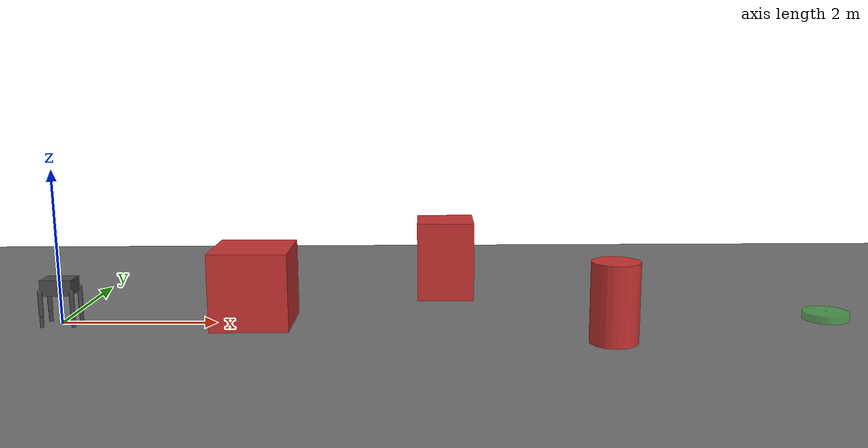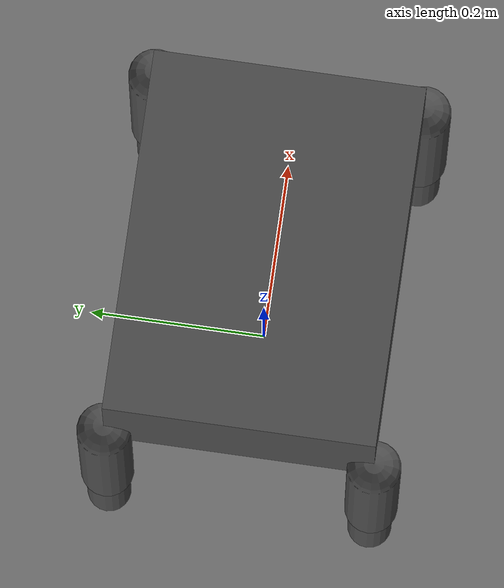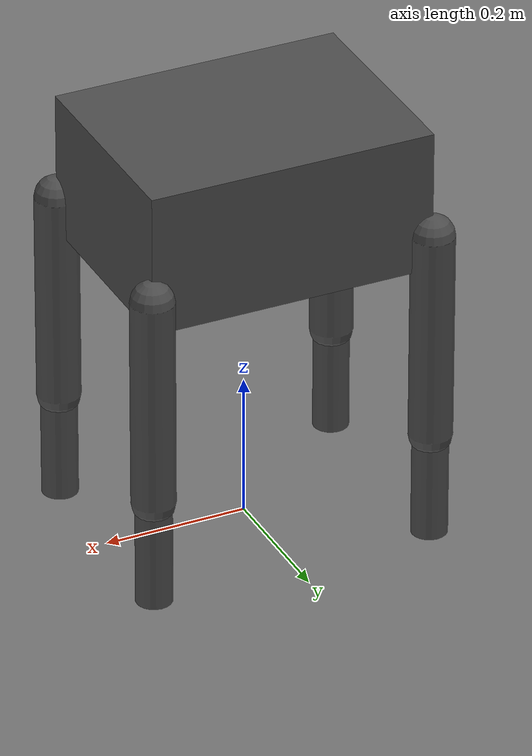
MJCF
<mujoco model="go2_obstacle_navigation">
  <compiler angle="radian" autolimits="true"/>
  <option timestep="0.001" gravity="0 0 -9.81" integrator="implicitfast"/>
  <default><joint armature="0.01" damping="0.1"/><geom condim="4" friction="1.0 0.005 0.0001"/></default>
  <asset>
    <texture name="grid" type="2d" builtin="checker" rgb1="0.4 0.4 0.4" rgb2="0.5 0.5 0.5" width="512" height="512"/>
    <material name="grid_mat" texture="grid" texrepeat="10 10" reflectance="0.1"/>
    <material name="obstacle_mat" rgba="0.8 0.2 0.2 1"/>
    <material name="goal_mat" rgba="0.2 0.8 0.2 0.5"/>
    <material name="robot_mat" rgba="0.3 0.3 0.3 1"/>
  </asset>
  <worldbody>
    <geom name="ground" type="plane" size="20 20 0.1" material="grid_mat"/>
    <light name="top" pos="0 0 10" dir="0 0 -1" diffuse="0.8 0.8 0.8"/>
    <body name="torso" pos="0 0 0.5">
      <inertial mass="20.0" pos="0 0 0" diaginertia="0.5 0.5 0.5"/>
      <geom name="torso_geom" type="box" size="0.2 0.15 0.1" material="robot_mat"/>
      <body name="fl_upper" pos="0.2 0.15 -0.05"><inertial mass="2" pos="0 0 -0.15" diaginertia="0.02 0.02 0.02"/><joint name="fl_hip" type="hinge" axis="1 0 0" range="-1 1"/><geom name="fl_ug" type="capsule" size="0.03" fromto="0 0 0 0 0 -0.3" material="robot_mat"/><body name="fl_lower" pos="0 0 -0.3"><inertial mass="1.5" pos="0 0 -0.15" diaginertia="0.01 0.01 0.01"/><joint name="fl_knee" type="hinge" axis="0 1 0" range="-2 0"/><geom name="fl_lg" type="capsule" size="0.025" fromto="0 0 0 0 0 -0.3" material="robot_mat"/><body name="fl_foot" pos="0 0 -0.3"><inertial mass="0.5" pos="0 0 0" diaginertia="0.001 0.001 0.001"/><geom name="fl_fg" type="sphere" size="0.03" material="robot_mat"/><site name="fl_foot_site" pos="0 0 0"/></body></body></body>
      <body name="fr_upper" pos="0.2 -0.15 -0.05"><inertial mass="2" pos="0 0 -0.15" diaginertia="0.02 0.02 0.02"/><joint name="fr_hip" type="hinge" axis="1 0 0" range="-1 1"/><geom name="fr_ug" type="capsule" size="0.03" fromto="0 0 0 0 0 -0.3" material="robot_mat"/><body name="fr_lower" pos="0 0 -0.3"><inertial mass="1.5" pos="0 0 -0.15" diaginertia="0.01 0.01 0.01"/><joint name="fr_knee" type="hinge" axis="0 1 0" range="-2 0"/><geom name="fr_lg" type="capsule" size="0.025" fromto="0 0 0 0 0 -0.3" material="robot_mat"/><body name="fr_foot" pos="0 0 -0.3"><inertial mass="0.5" pos="0 0 0" diaginertia="0.001 0.001 0.001"/><geom name="fr_fg" type="sphere" size="0.03" material="robot_mat"/><site name="fr_foot_site" pos="0 0 0"/></body></body></body>
      <body name="rl_upper" pos="-0.2 0.15 -0.05"><inertial mass="2" pos="0 0 -0.15" diaginertia="0.02 0.02 0.02"/><joint name="rl_hip" type="hinge" axis="1 0 0" range="-1 1"/><geom name="rl_ug" type="capsule" size="0.03" fromto="0 0 0 0 0 -0.3" material="robot_mat"/><body name="rl_lower" pos="0 0 -0.3"><inertial mass="1.5" pos="0 0 -0.15" diaginertia="0.01 0.01 0.01"/><joint name="rl_knee" type="hinge" axis="0 1 0" range="-2 0"/><geom name="rl_lg" type="capsule" size="0.025" fromto="0 0 0 0 0 -0.3" material="robot_mat"/><body name="rl_foot" pos="0 0 -0.3"><inertial mass="0.5" pos="0 0 0" diaginertia="0.001 0.001 0.001"/><geom name="rl_fg" type="sphere" size="0.03" material="robot_mat"/><site name="rl_foot_site" pos="0 0 0"/></body></body></body>
      <body name="rr_upper" pos="-0.2 -0.15 -0.05"><inertial mass="2" pos="0 0 -0.15" diaginertia="0.02 0.02 0.02"/><joint name="rr_hip" type="hinge" axis="1 0 0" range="-1 1"/><geom name="rr_ug" type="capsule" size="0.03" fromto="0 0 0 0 0 -0.3" material="robot_mat"/><body name="rr_lower" pos="0 0 -0.3"><inertial mass="1.5" pos="0 0 -0.15" diaginertia="0.01 0.01 0.01"/><joint name="rr_knee" type="hinge" axis="0 1 0" range="-2 0"/><geom name="rr_lg" type="capsule" size="0.025" fromto="0 0 0 0 0 -0.3" material="robot_mat"/><body name="rr_foot" pos="0 0 -0.3"><inertial mass="0.5" pos="0 0 0" diaginertia="0.001 0.001 0.001"/><geom name="rr_fg" type="sphere" size="0.03" material="robot_mat"/><site name="rr_foot_site" pos="0 0 0"/></body></body></body>
      <freejoint name="root"/>
    </body>
    <body name="obstacle_1" pos="2.5 0 0.5"><geom name="obs1" type="box" size="0.5 0.5 0.5" material="obstacle_mat" contype="1" conaffinity="1"/></body>
    <body name="obstacle_2" pos="5.0 1.5 0.5"><geom name="obs2" type="box" size="0.4 0.4 0.6" material="obstacle_mat" contype="1" conaffinity="1"/></body>
    <body name="obstacle_3" pos="7.0 -1.0 0.5"><geom name="obs3" type="cylinder" size="0.3 0.5" material="obstacle_mat" contype="1" conaffinity="1"/></body>
    <body name="goal" pos="10.0 0 0.05"><geom name="goal_geom" type="cylinder" size="0.3 0.05" material="goal_mat" contype="0" conaffinity="0"/><site name="goal_site" pos="0 0 0.05"/></body>
  </worldbody>
  <sensor>
    <framepos name="torso_pos" objtype="body" objname="torso"/>
  </sensor>
</mujoco>
